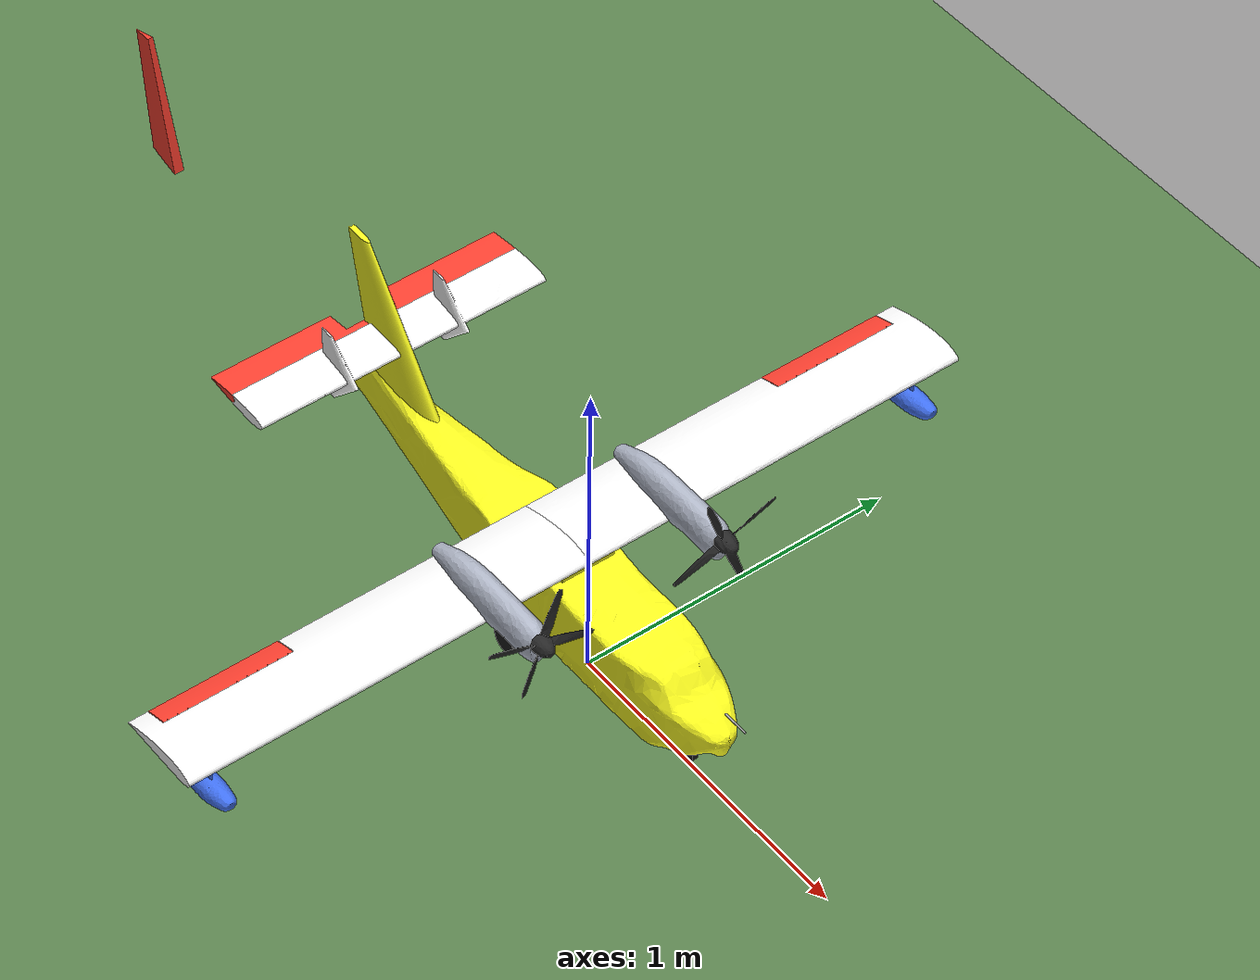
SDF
<?xml version="1.0" encoding="UTF-8"?>
<!-- runway world for the cl415 px4 sitl.
     location, magnetic field and physics step as px4's default world so the ekf's magnetic model agrees with the
     simulated magnetometer -->
<sdf version="1.9">
  <world name="cl415_runway">
    <physics type="ode">
      <max_step_size>0.004</max_step_size>
      <real_time_factor>1.0</real_time_factor>
      <real_time_update_rate>250</real_time_update_rate>
    </physics>
    <plugin filename="gz-sim-physics-system" name="gz::sim::systems::Physics"/>
    <plugin filename="gz-sim-user-commands-system" name="gz::sim::systems::UserCommands"/>
    <plugin filename="gz-sim-scene-broadcaster-system" name="gz::sim::systems::SceneBroadcaster"/>
    <plugin filename="gz-sim-contact-system" name="gz::sim::systems::Contact"/>
    <plugin filename="gz-sim-imu-system" name="gz::sim::systems::Imu"/>
    <plugin filename="gz-sim-air-pressure-system" name="gz::sim::systems::AirPressure"/>
    <plugin filename="gz-sim-air-speed-system" name="gz::sim::systems::AirSpeed"/>
    <plugin filename="gz-sim-navsat-system" name="gz::sim::systems::NavSat"/>
    <plugin filename="gz-sim-magnetometer-system" name="gz::sim::systems::Magnetometer"/>
    <plugin filename="gz-sim-sensors-system" name="gz::sim::systems::Sensors">
      <render_engine>ogre2</render_engine>
    </plugin>
    <gravity>0 0 -9.8</gravity>
    <magnetic_field>6e-06 2.3e-05 -4.2e-05</magnetic_field>
    <atmosphere type="adiabatic"/>
    <spherical_coordinates>
      <surface_model>EARTH_WGS84</surface_model>
      <world_frame_orientation>ENU</world_frame_orientation>
      <latitude_deg>47.397971057728974</latitude_deg>
      <longitude_deg>8.546163739800146</longitude_deg>
      <elevation>0</elevation>
    </spherical_coordinates>
    <scene>
      <grid>false</grid>
      <ambient>0.4 0.4 0.4 1</ambient>
      <background>0.6 0.75 0.9 1</background>
      <shadows>true</shadows>
    </scene>
    <light name="sun" type="directional">
      <pose>0 0 500 0 0 0</pose>
      <cast_shadows>true</cast_shadows>
      <diffuse>0.9 0.9 0.9 1</diffuse>
      <specular>0.3 0.3 0.3 1</specular>
      <direction>0.2 0.5 -0.8</direction>
    </light>
    <model name="ground">
      <static>true</static>
      <link name="link">
        <collision name="collision">
          <geometry><plane><normal>0 0 1</normal><size>4000 4000</size></plane></geometry>
          <surface><friction><ode><mu>1.0</mu><mu2>1.0</mu2></ode></friction></surface>
        </collision>
        <visual name="grass">
          <geometry><plane><normal>0 0 1</normal><size>4000 4000</size></plane></geometry>
          <material><ambient>0.35 0.5 0.3 1</ambient><diffuse>0.35 0.5 0.3 1</diffuse></material>
        </visual>
        <visual name="runway">
          <pose>150 0 0.005 0 0 0</pose>
          <geometry><box><size>400 20 0.01</size></box></geometry>
          <material><ambient>0.25 0.25 0.27 1</ambient><diffuse>0.25 0.25 0.27 1</diffuse></material>
        </visual>
        <visual name="centreline">
          <pose>150 0 0.011 0 0 0</pose>
          <geometry><box><size>380 0.3 0.002</size></box></geometry>
          <material><ambient>0.95 0.95 0.95 1</ambient><diffuse>0.95 0.95 0.95 1</diffuse></material>
        </visual>
      </link>
    </model>
    <model name="chase_cam">
      <pose>-8 -3.5 2.5 0 0 0</pose>
      <link name="link">
        <gravity>false</gravity>
        <inertial><mass>0.01</mass><inertia><ixx>1e-5</ixx><iyy>1e-5</iyy><izz>1e-5</izz></inertia></inertial>
        <sensor name="camera" type="camera">
          <update_rate>25</update_rate>
          <always_on>1</always_on>
          <visualize>false</visualize>
          <topic>/chase/image</topic>
          <camera>
            <horizontal_fov>0.85</horizontal_fov>
            <image><width>1280</width><height>720</height><format>R8G8B8</format></image>
            <clip><near>0.1</near><far>4000</far></clip>
          </camera>
          <plugin filename="gz-sim-camera-video-recorder-system" name="gz::sim::systems::CameraVideoRecorder">
            <service>/chase/record_video</service>
            <use_sim_time>true</use_sim_time>
            <fps>25</fps>
            <bitrate>6000000</bitrate>
          </plugin>
        </sensor>
      </link>
      <plugin filename="libCl415ChaseCamera.so" name="cl415::ChaseCamera">
        <target>cl415</target>
        <offset>-5.5 -2.6 1.3</offset>
        <look_height>0.1</look_height>
        <smoothing>0.25</smoothing>
      </plugin>
    </model>
    <include>
      <uri>model://cl415_px4</uri>
      <name>cl415</name>
      <pose>0 0 0.385 0 0 0</pose>
    </include>
  </world>
</sdf>

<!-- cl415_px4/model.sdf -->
<sdf version="1.11">
  <model name="cl415">
    <link name="base_link">
      <inertial>
        <pose>-0.068479471323888638 1.157110930130461e-06 -0.1051177703273083 0 0 0</pose>
        <mass>10.234999999999999</mass>
        <inertia>
          <ixx>1.1161726540920169</ixx>
          <ixy>-4.6032458373154549e-06</ixy>
          <ixz>0.03066836335247879</ixz>
          <iyy>0.79641183099399082</iyy>
          <iyz>-2.1113177945229111e-06</iyz>
          <izz>1.7147058934209141</izz>
        </inertia>
      </inertial>
      <collision name="base_link_fixed_joint_lump__fuselage_c0_collision">
        <pose>0.53251000000000004 0 -0.18029100000000001 0 0 0</pose>
        <geometry>
          <box>
            <size>0.12501999999999999 0.11189300000000001 0.14921499999999999</size>
          </box>
        </geometry>
      </collision>
      <collision name="base_link_fixed_joint_lump__fuselage_c1_collision_1">
        <pose>0.38500000000000001 0 -0.151395 0 0 0</pose>
        <geometry>
          <box>
            <size>0.17000000000000001 0.19908899999999999 0.26514300000000002</size>
          </box>
        </geometry>
      </collision>
      <collision name="base_link_fixed_joint_lump__fuselage_c2_collision_2">
        <pose>0.079963699999999999 0 -0.16194500000000001 0 0 0</pose>
        <geometry>
          <box>
            <size>0.44007299999999999 0.21010100000000001 0.28918899999999997</size>
          </box>
        </geometry>
      </collision>
      <collision name="base_link_fixed_joint_lump__fuselage_c3_collision_3">
        <pose>-0.29503600000000002 0 -0.142785 0 0 0</pose>
        <geometry>
          <box>
            <size>0.30992700000000001 0.197964 0.25087100000000001</size>
          </box>
        </geometry>
      </collision>
      <collision name="base_link_fixed_joint_lump__fuselage_c4_collision_4">
        <pose>-0.59999999999999998 0 -0.123921 0 0 0</pose>
        <geometry>
          <box>
            <size>0.29999999999999999 0.120182 0.21313799999999999</size>
          </box>
        </geometry>
      </collision>
      <collision name="base_link_fixed_joint_lump__fuselage_c5_collision_5">
        <pose>-0.92124899999999998 0 -0.10417899999999999 0 0 0</pose>
        <geometry>
          <box>
            <size>0.34249800000000002 0.038124199999999997 0.169682</size>
          </box>
        </geometry>
      </collision>
      <collision name="base_link_fixed_joint_lump__h_stab_c0_collision_6">
        <pose>-0.88500000000000001 0 0.127 0 0 0</pose>
        <geometry>
          <box>
            <size>0.14399999999999999 0.93600000000000005 0.038240000000000003</size>
          </box>
        </geometry>
      </collision>
      <collision name="base_link_fixed_joint_lump__left_float_c0_collision_7">
        <pose>-0.099890599999999996 1.1516999999999999 -0.14177899999999999 0 0 0</pose>
        <geometry>
          <box>
            <size>0.25748799999999999 0.037082799999999999 0.080418199999999995</size>
          </box>
        </geometry>
      </collision>
      <collision name="base_link_fixed_joint_lump__left_float_c1_collision_8">
        <pose>-0.10000000000000001 1.1516999999999999 -0.051569499999999997 0 0 0</pose>
        <geometry>
          <box>
            <size>0.080000000000000002 0.0089999999999999993 0.10000000000000001</size>
          </box>
        </geometry>
      </collision>
      <collision name="base_link_fixed_joint_lump__left_nacelle_c0_collision_9">
        <pose>-0.039742899999999998 0.29730099999999998 0.037859299999999999 0 0 0</pose>
        <geometry>
          <box>
            <size>0.39480500000000002 0.078228300000000001 0.126691</size>
          </box>
        </geometry>
      </collision>
      <collision name="base_link_fixed_joint_lump__left_wing_c0_collision_10">
        <pose>-0.139351 0.62749999999999995 0.0043729199999999998 0 -0.046251200000000027 0</pose>
        <geometry>
          <box>
            <size>0.27800000000000002 1.2549999999999999 0.047260000000000003</size>
          </box>
        </geometry>
      </collision>
      <collision name="base_link_fixed_joint_lump__right_float_c0_collision_11">
        <pose>-0.099890599999999996 -1.1516999999999999 -0.14177899999999999 0 0 0</pose>
        <geometry>
          <box>
            <size>0.25748799999999999 0.037082799999999999 0.080418199999999995</size>
          </box>
        </geometry>
      </collision>
      <collision name="base_link_fixed_joint_lump__right_float_c1_collision_12">
        <pose>-0.10000000000000001 -1.1516999999999999 -0.051569499999999997 0 0 0</pose>
        <geometry>
          <box>
            <size>0.080000000000000002 0.0089999999999999993 0.10000000000000001</size>
          </box>
        </geometry>
      </collision>
      <collision name="base_link_fixed_joint_lump__right_nacelle_c0_collision_13">
        <pose>-0.039742899999999998 -0.29729899999999998 0.037859299999999999 0 0 0</pose>
        <geometry>
          <box>
            <size>0.39480500000000002 0.078228300000000001 0.126691</size>
          </box>
        </geometry>
      </collision>
      <collision name="base_link_fixed_joint_lump__right_wing_c0_collision_14">
        <pose>-0.139351 -0.62749999999999995 0.0043729199999999998 0 -0.046251200000000027 0</pose>
        <geometry>
          <box>
            <size>0.27800000000000002 1.2549999999999999 0.047260000000000003</size>
          </box>
        </geometry>
      </collision>
      <collision name="base_link_fixed_joint_lump__v_stab_c0_collision_15">
        <pose>-0.86274300000000004 2.9923499999999999e-05 0.19685 0 0 0</pose>
        <geometry>
          <box>
            <size>0.35145500000000002 0.047060900000000003 0.40170600000000001</size>
          </box>
        </geometry>
      </collision>
      <visual name="base_link_fixed_joint_lump__fuselage_visual">
        <pose>0 0 0 0 0 0</pose>
        <geometry>
          <mesh>
            <scale>1 1 1</scale>
            <uri>model://cl415_description/meshes/fuselage.stl</uri>
          </mesh>
        </geometry>
        <material>
          <diffuse>1 1 0.125 1</diffuse>
          <ambient>1 1 0.125 1</ambient>
        </material>
      </visual>
      <visual name="base_link_fixed_joint_lump__h_stab_visual_1">
        <pose>0 0 0 0 0 0</pose>
        <geometry>
          <mesh>
            <scale>1 1 1</scale>
            <uri>model://cl415_description/meshes/h_stab.stl</uri>
          </mesh>
        </geometry>
        <material>
          <diffuse>1 1 1 1</diffuse>
          <ambient>1 1 1 1</ambient>
        </material>
      </visual>
      <visual name="base_link_fixed_joint_lump__left_float_visual_2">
        <pose>0 0 0 0 0 0</pose>
        <geometry>
          <mesh>
            <scale>1 1 1</scale>
            <uri>model://cl415_description/meshes/left_float.stl</uri>
          </mesh>
        </geometry>
        <material>
          <diffuse>0.25 0.4375 0.9375 1</diffuse>
          <ambient>0.25 0.4375 0.9375 1</ambient>
        </material>
      </visual>
      <visual name="base_link_fixed_joint_lump__left_nacelle_visual_3">
        <pose>0 0 0 0 0 0</pose>
        <geometry>
          <mesh>
            <scale>1 1 1</scale>
            <uri>model://cl415_description/meshes/left_nacelle.stl</uri>
          </mesh>
        </geometry>
        <material>
          <diffuse>0.6875 0.712499976 0.775000036 1</diffuse>
          <ambient>0.6875 0.712499976 0.775000036 1</ambient>
        </material>
      </visual>
      <visual name="base_link_fixed_joint_lump__left_wing_visual_4">
        <pose>0 0 0 0 0 0</pose>
        <geometry>
          <mesh>
            <scale>1 1 1</scale>
            <uri>model://cl415_description/meshes/left_wing.stl</uri>
          </mesh>
        </geometry>
        <material>
          <diffuse>1 1 1 1</diffuse>
          <ambient>1 1 1 1</ambient>
        </material>
      </visual>
      <visual name="base_link_fixed_joint_lump__right_float_visual_5">
        <pose>0 0 0 0 0 0</pose>
        <geometry>
          <mesh>
            <scale>1 1 1</scale>
            <uri>model://cl415_description/meshes/right_float.stl</uri>
          </mesh>
        </geometry>
        <material>
          <diffuse>0.25 0.4375 0.9375 1</diffuse>
          <ambient>0.25 0.4375 0.9375 1</ambient>
        </material>
      </visual>
      <visual name="base_link_fixed_joint_lump__right_nacelle_visual_6">
        <pose>0 0 0 0 0 0</pose>
        <geometry>
          <mesh>
            <scale>1 1 1</scale>
            <uri>model://cl415_description/meshes/right_nacelle.stl</uri>
          </mesh>
        </geometry>
        <material>
          <diffuse>0.6875 0.712499976 0.775000036 1</diffuse>
          <ambient>0.6875 0.712499976 0.775000036 1</ambient>
        </material>
      </visual>
      <visual name="base_link_fixed_joint_lump__right_wing_visual_7">
        <pose>0 0 0 0 0 0</pose>
        <geometry>
          <mesh>
            <scale>1 1 1</scale>
            <uri>model://cl415_description/meshes/right_wing.stl</uri>
          </mesh>
        </geometry>
        <material>
          <diffuse>1 1 1 1</diffuse>
          <ambient>1 1 1 1</ambient>
        </material>
      </visual>
      <visual name="base_link_fixed_joint_lump__v_stab_visual_8">
        <pose>0 0 0 0 0 0</pose>
        <geometry>
          <mesh>
            <scale>1 1 1</scale>
            <uri>model://cl415_description/meshes/v_stab.stl</uri>
          </mesh>
        </geometry>
        <material>
          <diffuse>1 1 0.125 1</diffuse>
          <ambient>1 1 0.125 1</ambient>
        </material>
      </visual>
      <visual name="base_link_fixed_joint_lump__water_tank_visual_9">
        <pose>0 0 0 0 0 0</pose>
        <geometry>
          <mesh>
            <scale>1 1 1</scale>
            <uri>model://cl415_description/meshes/water_tank.stl</uri>
          </mesh>
        </geometry>
        <material>
          <diffuse>0.875 1 1 1</diffuse>
          <ambient>0.875 1 1 1</ambient>
        </material>
      </visual>
      <sensor name="imu_sensor" type="imu">
        <pose>-0.0754 0 -0.1007 0 0 0</pose>
        <always_on>1</always_on>
        <update_rate>250</update_rate>
        <imu>
          <angular_velocity>
            <x>
              <noise type="gaussian">
                <mean>0</mean>
                <stddev>0.0003394</stddev>
                <dynamic_bias_stddev>3.8785e-05</dynamic_bias_stddev>
                <dynamic_bias_correlation_time>1000</dynamic_bias_correlation_time>
              </noise>
            </x>
            <y>
              <noise type="gaussian">
                <mean>0</mean>
                <stddev>0.0003394</stddev>
                <dynamic_bias_stddev>3.8785e-05</dynamic_bias_stddev>
                <dynamic_bias_correlation_time>1000</dynamic_bias_correlation_time>
              </noise>
            </y>
            <z>
              <noise type="gaussian">
                <mean>0</mean>
                <stddev>0.0003394</stddev>
                <dynamic_bias_stddev>3.8785e-05</dynamic_bias_stddev>
                <dynamic_bias_correlation_time>1000</dynamic_bias_correlation_time>
              </noise>
            </z>
          </angular_velocity>
          <linear_acceleration>
            <x>
              <noise type="gaussian">
                <mean>0</mean>
                <stddev>0.004</stddev>
                <dynamic_bias_stddev>0.006</dynamic_bias_stddev>
                <dynamic_bias_correlation_time>300</dynamic_bias_correlation_time>
              </noise>
            </x>
            <y>
              <noise type="gaussian">
                <mean>0</mean>
                <stddev>0.004</stddev>
                <dynamic_bias_stddev>0.006</dynamic_bias_stddev>
                <dynamic_bias_correlation_time>300</dynamic_bias_correlation_time>
              </noise>
            </y>
            <z>
              <noise type="gaussian">
                <mean>0</mean>
                <stddev>0.004</stddev>
                <dynamic_bias_stddev>0.006</dynamic_bias_stddev>
                <dynamic_bias_correlation_time>300</dynamic_bias_correlation_time>
              </noise>
            </z>
          </linear_acceleration>
        </imu>
      </sensor>
      <sensor name="air_pressure_sensor" type="air_pressure">
        <always_on>1</always_on>
        <update_rate>50</update_rate>
        <air_pressure>
          <pressure>
            <noise type="gaussian">
              <mean>0</mean>
              <stddev>0.01</stddev>
            </noise>
          </pressure>
        </air_pressure>
      </sensor>
      <sensor name="navsat_sensor" type="navsat">
        <always_on>1</always_on>
        <update_rate>30</update_rate>
      </sensor>
      <visual name="nose_strut_visual">
        <pose>0.4200 0.0000 -0.3025 0.0000 0 0</pose>
        <geometry>
          <cylinder>
            <radius>0.006</radius>
            <length>0.0650</length>
          </cylinder>
        </geometry>
        <material>
          <diffuse>0.6 0.6 0.6 1</diffuse>
          <ambient>0.6 0.6 0.6 1</ambient>
        </material>
      </visual>
      <visual name="lmain_strut_visual">
        <pose>-0.1501 0.1300 -0.2576 0.4804 0 0</pose>
        <geometry>
          <cylinder>
            <radius>0.006</radius>
            <length>0.1298</length>
          </cylinder>
        </geometry>
        <material>
          <diffuse>0.6 0.6 0.6 1</diffuse>
          <ambient>0.6 0.6 0.6 1</ambient>
        </material>
      </visual>
      <visual name="rmain_strut_visual">
        <pose>-0.1501 -0.1300 -0.2576 -0.4804 0 0</pose>
        <geometry>
          <cylinder>
            <radius>0.006</radius>
            <length>0.1298</length>
          </cylinder>
        </geometry>
        <material>
          <diffuse>0.6 0.6 0.6 1</diffuse>
          <ambient>0.6 0.6 0.6 1</ambient>
        </material>
      </visual>
    </link>
    <joint name="elevator_joint" type="revolute">
      <pose relative_to="base_link">-0.95699999999999996 0 0.127 0 0 0</pose>
      <parent>base_link</parent>
      <child>elevator</child>
      <axis>
        <xyz>0 -1 0</xyz>
        <limit>
          <lower>-0.436332</lower>
          <upper>0.436332</upper>
          <effort>2</effort>
          <velocity>8.6999999999999993</velocity>
        </limit>
        <dynamics>
          <damping>0.001</damping>
          <friction>0</friction>
          <spring_reference>0</spring_reference>
          <spring_stiffness>0</spring_stiffness>
        </dynamics>
      </axis>
    </joint>
    <link name="elevator">
      <pose relative_to="elevator_joint">0 0 0 0 0 0</pose>
      <inertial>
        <pose>-0.025073100000000001 1.80306e-07 1.08467e-08 0 0 0</pose>
        <mass>0.059999999999999998</mass>
        <inertia>
          <ixx>0.0049509999999999997</ixx>
          <ixy>-2.74619e-11</ixy>
          <ixz>6.4644800000000001e-11</ixz>
          <iyy>4.2833200000000002e-05</iyy>
          <iyz>1.9838599999999999e-10</iyz>
          <izz>0.0049888900000000002</izz>
        </inertia>
      </inertial>
      <collision name="elevator_c0_collision">
        <pose>-0.040276300000000001 -2.7755599999999997e-17 -1.3877799999999999e-17 0 0 0</pose>
        <geometry>
          <box>
            <size>0.109447 0.93600000000000005 0.028952100000000001</size>
          </box>
        </geometry>
      </collision>
      <visual name="elevator_visual">
        <pose>0 0 0 0 0 0</pose>
        <geometry>
          <mesh>
            <scale>1 1 1</scale>
            <uri>model://cl415_description/meshes/elevator.stl</uri>
          </mesh>
        </geometry>
        <material>
          <diffuse>1 0.25 0.187500015 1</diffuse>
          <ambient>1 0.25 0.187500015 1</ambient>
        </material>
      </visual>
    </link>
    <joint name="left_propeller_joint" type="revolute">
      <pose relative_to="base_link">0.1895 0.29730000000000001 0.060600000000000001 3.1415926535897931 1.5707926536359933 3.1415926535897931</pose>
      <parent>base_link</parent>
      <child>left_propeller</child>
      <axis>
        <xyz>0 0 1</xyz>
        <limit>
          <effort>10</effort>
          <velocity>200</velocity>
          <lower>-inf</lower>
          <upper>inf</upper>
        </limit>
        <dynamics>
          <spring_reference>0</spring_reference>
          <spring_stiffness>0</spring_stiffness>
        </dynamics>
      </axis>
    </joint>
    <link name="left_propeller">
      <pose relative_to="left_propeller_joint">0 0 0 0 0 0</pose>
      <inertial>
        <pose>-9.9280700000000003e-07 2.05844e-07 0.0079392899999999999 0 0 0</pose>
        <mass>0.050000000000000003</mass>
        <inertia>
          <ixx>6.4521699999999996e-05</ixx>
          <ixy>-4.1732299999999997e-11</ixy>
          <ixz>-7.4176499999999997e-10</ixz>
          <iyy>6.4524599999999995e-05</iyy>
          <iyz>1.94693e-10</iyz>
          <izz>0.000111037</izz>
        </inertia>
      </inertial>
      <collision name="left_propeller_c0_collision">
        <pose>0 0 0.01745 0 0 0</pose>
        <geometry>
          <cylinder>
            <length>0.058900000000000001</length>
            <radius>0.029600000000000001</radius>
          </cylinder>
        </geometry>
      </collision>
      <visual name="left_propeller_visual">
        <pose>0 0 0 0 0 0</pose>
        <geometry>
          <mesh>
            <scale>1 1 1</scale>
            <uri>model://cl415_description/meshes/left_propeller.stl</uri>
          </mesh>
        </geometry>
        <material>
          <diffuse>0.149999991 0.149999991 0.149999991 1</diffuse>
          <ambient>0.149999991 0.149999991 0.149999991 1</ambient>
        </material>
      </visual>
    </link>
    <joint name="left_aileron_joint" type="revolute">
      <pose relative_to="base_link">-0.208616 0.99399999999999999 -0.00231168 0 0 0</pose>
      <parent>base_link</parent>
      <child>left_aileron</child>
      <axis>
        <xyz>0 -1 0</xyz>
        <limit>
          <lower>-0.436332</lower>
          <upper>0.436332</upper>
          <effort>2</effort>
          <velocity>8.6999999999999993</velocity>
        </limit>
        <dynamics>
          <damping>0.001</damping>
          <friction>0</friction>
          <spring_reference>0</spring_reference>
          <spring_stiffness>0</spring_stiffness>
        </dynamics>
      </axis>
    </joint>
    <link name="left_aileron">
      <pose relative_to="left_aileron_joint">0 0 0 0 0 0</pose>
      <inertial>
        <pose>-0.0183503 -1.25899e-13 -0.0025524900000000001 0 0 0</pose>
        <mass>0.035000000000000003</mass>
        <inertia>
          <ixx>0.00046329200000000002</ixx>
          <ixy>0</ixy>
          <ixz>-1.74855e-06</ixz>
          <iyy>1.44088e-05</iyy>
          <iyz>0</iyz>
          <izz>0.00047513999999999998</izz>
        </inertia>
      </inertial>
      <collision name="left_aileron_c0_collision">
        <pose>-0.028365999999999999 -3.7025900000000001e-14 0.00013086799999999999 0 0 0</pose>
        <geometry>
          <box>
            <size>0.081617599999999998 0.39800000000000002 0.024963699999999998</size>
          </box>
        </geometry>
      </collision>
      <visual name="left_aileron_visual">
        <pose>0 0 0 0 0 0</pose>
        <geometry>
          <mesh>
            <scale>1 1 1</scale>
            <uri>model://cl415_description/meshes/left_aileron.stl</uri>
          </mesh>
        </geometry>
        <material>
          <diffuse>1 0.25 0.187500015 1</diffuse>
          <ambient>1 0.25 0.187500015 1</ambient>
        </material>
      </visual>
    </link>
    <joint name="right_propeller_joint" type="revolute">
      <pose relative_to="base_link">0.1895 -0.29730000000000001 0.060600000000000001 3.1415926535897931 1.5707926536359933 3.1415926535897931</pose>
      <parent>base_link</parent>
      <child>right_propeller</child>
      <axis>
        <xyz>0 0 1</xyz>
        <limit>
          <effort>10</effort>
          <velocity>200</velocity>
          <lower>-inf</lower>
          <upper>inf</upper>
        </limit>
        <dynamics>
          <spring_reference>0</spring_reference>
          <spring_stiffness>0</spring_stiffness>
        </dynamics>
      </axis>
    </joint>
    <link name="right_propeller">
      <pose relative_to="right_propeller_joint">0 0 0 0 0 0</pose>
      <inertial>
        <pose>-2.1925999999999999e-07 -2.9518399999999998e-07 0.0079393599999999995 0 0 0</pose>
        <mass>0.050000000000000003</mass>
        <inertia>
          <ixx>6.4521800000000003e-05</ixx>
          <ixy>1.3965499999999999e-09</ixy>
          <ixz>-2.5966100000000002e-10</ixz>
          <iyy>6.4533800000000002e-05</iyy>
          <iyz>-1.6273500000000001e-10</iyz>
          <izz>0.00011104599999999999</izz>
        </inertia>
      </inertial>
      <collision name="right_propeller_c0_collision">
        <pose>0 0 0.01745 0 0 0</pose>
        <geometry>
          <cylinder>
            <length>0.058900000000000001</length>
            <radius>0.029600000000000001</radius>
          </cylinder>
        </geometry>
      </collision>
      <visual name="right_propeller_visual">
        <pose>0 0 0 0 0 0</pose>
        <geometry>
          <mesh>
            <scale>1 1 1</scale>
            <uri>model://cl415_description/meshes/right_propeller.stl</uri>
          </mesh>
        </geometry>
        <material>
          <diffuse>0.149999991 0.149999991 0.149999991 1</diffuse>
          <ambient>0.149999991 0.149999991 0.149999991 1</ambient>
        </material>
      </visual>
    </link>
    <joint name="right_aileron_joint" type="revolute">
      <pose relative_to="base_link">-0.208616 -0.99399999999999999 -0.00231168 0 0 0</pose>
      <parent>base_link</parent>
      <child>right_aileron</child>
      <axis>
        <xyz>0 -1 0</xyz>
        <limit>
          <lower>-0.436332</lower>
          <upper>0.436332</upper>
          <effort>2</effort>
          <velocity>8.6999999999999993</velocity>
        </limit>
        <dynamics>
          <damping>0.001</damping>
          <friction>0</friction>
          <spring_reference>0</spring_reference>
          <spring_stiffness>0</spring_stiffness>
        </dynamics>
      </axis>
    </joint>
    <link name="right_aileron">
      <pose relative_to="right_aileron_joint">0 0 0 0 0 0</pose>
      <inertial>
        <pose>-0.0183503 -1.11577e-13 -0.0025524900000000001 0 0 0</pose>
        <mass>0.035000000000000003</mass>
        <inertia>
          <ixx>0.00046329200000000002</ixx>
          <ixy>0</ixy>
          <ixz>-1.74855e-06</ixz>
          <iyy>1.44088e-05</iyy>
          <iyz>0</iyz>
          <izz>0.00047513999999999998</izz>
        </inertia>
      </inertial>
      <collision name="right_aileron_c0_collision">
        <pose>-0.028365999999999999 -5.5511199999999995e-17 0.00013086799999999999 0 0 0</pose>
        <geometry>
          <box>
            <size>0.081617599999999998 0.39800000000000002 0.024963699999999998</size>
          </box>
        </geometry>
      </collision>
      <visual name="right_aileron_visual">
        <pose>0 0 0 0 0 0</pose>
        <geometry>
          <mesh>
            <scale>1 1 1</scale>
            <uri>model://cl415_description/meshes/right_aileron.stl</uri>
          </mesh>
        </geometry>
        <material>
          <diffuse>1 0.25 0.187500015 1</diffuse>
          <ambient>1 0.25 0.187500015 1</ambient>
        </material>
      </visual>
    </link>
    <joint name="rudder_joint" type="revolute">
      <pose relative_to="base_link">-0.95599999999999996 0 -0.017299999999999999 0 0 0</pose>
      <parent>base_link</parent>
      <child>rudder</child>
      <axis>
        <xyz>0.23288200000000001 0 -0.97250499999999995</xyz>
        <limit>
          <lower>-0.52359900000000004</lower>
          <upper>0.52359900000000004</upper>
          <effort>2</effort>
          <velocity>8.6999999999999993</velocity>
        </limit>
        <dynamics>
          <damping>0.001</damping>
          <friction>0</friction>
          <spring_reference>0</spring_reference>
          <spring_stiffness>0</spring_stiffness>
        </dynamics>
      </axis>
    </joint>
    <link name="rudder">
      <pose relative_to="rudder_joint">0 0 0 0 0 0</pose>
      <inertial>
        <pose>-0.080166600000000005 1.2362500000000001e-08 0.176709 0 0 0</pose>
        <mass>0.035000000000000003</mass>
        <inertia>
          <ixx>0.00047898199999999998</ixx>
          <ixy>-2.5839099999999998e-10</ixy>
          <ixz>9.1311999999999996e-05</ixz>
          <iyy>0.000520003</iyy>
          <iyz>-7.29896e-11</iyz>
          <izz>4.3085399999999999e-05</izz>
        </inertia>
      </inertial>
      <collision name="rudder_c0_collision">
        <pose>-0.088195800000000005 -1.73472e-18 0.21965000000000001 0 0 0</pose>
        <geometry>
          <box>
            <size>0.17399700000000001 0.031550700000000001 0.42930000000000001</size>
          </box>
        </geometry>
      </collision>
      <visual name="rudder_visual">
        <pose>0 0 0 0 0 0</pose>
        <geometry>
          <mesh>
            <scale>1 1 1</scale>
            <uri>model://cl415_description/meshes/rudder.stl</uri>
          </mesh>
        </geometry>
        <material>
          <diffuse>1 0.25 0.187500015 1</diffuse>
          <ambient>1 0.25 0.187500015 1</ambient>
        </material>
      </visual>
    </link>
    <plugin name="gz::sim::systems::JointPositionController" filename="gz-sim-joint-position-controller-system">
      <joint_name>left_aileron_joint</joint_name>
      <topic>/model/cl415/servo_0</topic>
      <p_gain>0.1691</p_gain>
      <i_gain>0.5411</i_gain>
      <d_gain>0.004228</d_gain>
      <i_max>0.15</i_max>
      <i_min>-0.15</i_min>
      <cmd_max>0.5</cmd_max>
      <cmd_min>-0.5</cmd_min>
    </plugin>
    <plugin name="gz::sim::systems::JointPositionController" filename="gz-sim-joint-position-controller-system">
      <joint_name>right_aileron_joint</joint_name>
      <topic>/model/cl415/servo_1</topic>
      <p_gain>0.1691</p_gain>
      <i_gain>0.5411</i_gain>
      <d_gain>0.004228</d_gain>
      <i_max>0.15</i_max>
      <i_min>-0.15</i_min>
      <cmd_max>0.5</cmd_max>
      <cmd_min>-0.5</cmd_min>
    </plugin>
    <plugin name="gz::sim::systems::JointPositionController" filename="gz-sim-joint-position-controller-system">
      <joint_name>elevator_joint</joint_name>
      <topic>/model/cl415/servo_2</topic>
      <p_gain>0.5155</p_gain>
      <i_gain>1.65</i_gain>
      <d_gain>0.01289</d_gain>
      <i_max>0.15</i_max>
      <i_min>-0.15</i_min>
      <cmd_max>0.5</cmd_max>
      <cmd_min>-0.5</cmd_min>
    </plugin>
    <plugin name="gz::sim::systems::JointPositionController" filename="gz-sim-joint-position-controller-system">
      <joint_name>rudder_joint</joint_name>
      <topic>/model/cl415/servo_3</topic>
      <p_gain>0.4659</p_gain>
      <i_gain>1.491</i_gain>
      <d_gain>0.01165</d_gain>
      <i_max>0.15</i_max>
      <i_min>-0.15</i_min>
      <cmd_max>0.5</cmd_max>
      <cmd_min>-0.5</cmd_min>
    </plugin>
    <plugin name="gz::sim::systems::JointStatePublisher" filename="gz-sim-joint-state-publisher-system">
      <topic>/cl415/joint_states</topic>
    </plugin>
    <plugin name="gz::sim::systems::OdometryPublisher" filename="gz-sim-odometry-publisher-system">
      <odom_frame>odom</odom_frame>
      <robot_base_frame>base_link</robot_base_frame>
      <dimensions>3</dimensions>
      <odom_publish_frequency>50</odom_publish_frequency>
      <odom_topic>/cl415/odometry</odom_topic>
      <tf_topic>/cl415/tf</tf_topic>
    </plugin>
    <frame name="fuselage_joint" attached_to="base_link">
      <pose>0 0 0 0 0 0</pose>
    </frame>
    <frame name="fuselage" attached_to="fuselage_joint">
      <pose>0 0 0 0 0 0</pose>
    </frame>
    <frame name="h_stab_joint" attached_to="base_link">
      <pose>0 0 0 0 0 0</pose>
    </frame>
    <frame name="h_stab" attached_to="h_stab_joint">
      <pose>0 0 0 0 0 0</pose>
    </frame>
    <frame name="left_float_joint" attached_to="base_link">
      <pose>0 0 0 0 0 0</pose>
    </frame>
    <frame name="left_float" attached_to="left_float_joint">
      <pose>0 0 0 0 0 0</pose>
    </frame>
    <frame name="left_nacelle_joint" attached_to="base_link">
      <pose>0 0 0 0 0 0</pose>
    </frame>
    <frame name="left_nacelle" attached_to="left_nacelle_joint">
      <pose>0 0 0 0 0 0</pose>
    </frame>
    <frame name="left_wing_joint" attached_to="base_link">
      <pose>0 0 0 0 0 0</pose>
    </frame>
    <frame name="left_wing" attached_to="left_wing_joint">
      <pose>0 0 0 0 0 0</pose>
    </frame>
    <frame name="right_float_joint" attached_to="base_link">
      <pose>0 0 0 0 0 0</pose>
    </frame>
    <frame name="right_float" attached_to="right_float_joint">
      <pose>0 0 0 0 0 0</pose>
    </frame>
    <frame name="right_nacelle_joint" attached_to="base_link">
      <pose>0 0 0 0 0 0</pose>
    </frame>
    <frame name="right_nacelle" attached_to="right_nacelle_joint">
      <pose>0 0 0 0 0 0</pose>
    </frame>
    <frame name="right_wing_joint" attached_to="base_link">
      <pose>0 0 0 0 0 0</pose>
    </frame>
    <frame name="right_wing" attached_to="right_wing_joint">
      <pose>0 0 0 0 0 0</pose>
    </frame>
    <frame name="v_stab_joint" attached_to="base_link">
      <pose>0 0 0 0 0 0</pose>
    </frame>
    <frame name="v_stab" attached_to="v_stab_joint">
      <pose>0 0 0 0 0 0</pose>
    </frame>
    <frame name="water_tank_joint" attached_to="base_link">
      <pose>0 0 0 0 0 0</pose>
    </frame>
    <frame name="water_tank" attached_to="water_tank_joint">
      <pose>0 0 0 0 0 0</pose>
    </frame>
    <plugin filename="gz-sim-advanced-lift-drag-system" name="gz::sim::systems::AdvancedLiftDrag">
      <link_name>base_link</link_name>
      <air_density>1.225</air_density>
      <area>0.698035</area>
      <AR>9.02548</AR>
      <mac>0.278</mac>
      <eff>0.928047</eff>
      <cp>-0.07545 0.00000 -0.10066</cp>
      <forward>1 0 0</forward>
      <upward>0 0 1</upward>
      <CL0>0.544231</CL0>
      <CLa>6.09047</CLa>
      <alpha_stall>0.251327</alpha_stall>
      <CD0>0.032783</CD0>
      <Cem0>0.05539</Cem0>
      <Cema>-1.53427</Cema>
      <Cema_stall>-1.53427</Cema_stall>
      <CYa>0</CYa>
      <Cella>0</Cella>
      <Cena>0</Cena>
      <CLb>-0</CLb>
      <CYb>-0.469932</CYb>
      <Cellb>-0.06012</Cellb>
      <Cemb>0</Cemb>
      <Cenb>0.072001</Cenb>
      <CDp>0</CDp>
      <CYp>-0.009409</CYp>
      <CLp>0</CLp>
      <Cellp>-0.549225</Cellp>
      <Cemp>-0</Cemp>
      <Cenp>-0.029423</Cenp>
      <CDq>0.308277</CDq>
      <CYq>0</CYq>
      <CLq>9.98403</CLq>
      <Cellq>0</Cellq>
      <Cemq>-20.8295</Cemq>
      <Cenq>0</Cenq>
      <CDr>0</CDr>
      <CYr>0.202182</CYr>
      <CLr>0</CLr>
      <Cellr>0.180921</Cellr>
      <Cemr>0</Cemr>
      <Cenr>-0.119828</Cenr>
      <num_ctrl_surfaces>4</num_ctrl_surfaces>
      <control_surface>
        <name>left_aileron_joint</name>
        <direction>1</direction>
        <CD_ctrl>0</CD_ctrl>
        <CY_ctrl>-9.87296e-05</CY_ctrl>
        <CL_ctrl>0.00459018</CL_ctrl>
        <Cell_ctrl>0.00181779</Cell_ctrl>
        <Cem_ctrl>-0.00266743</Cem_ctrl>
        <Cen_ctrl>-0.000107441</Cen_ctrl>
      </control_surface>
      <control_surface>
        <name>right_aileron_joint</name>
        <direction>1</direction>
        <CD_ctrl>0</CD_ctrl>
        <CY_ctrl>9.87296e-05</CY_ctrl>
        <CL_ctrl>0.00459018</CL_ctrl>
        <Cell_ctrl>-0.00181779</Cell_ctrl>
        <Cem_ctrl>-0.00266743</Cem_ctrl>
        <Cen_ctrl>0.000107441</Cen_ctrl>
      </control_surface>
      <control_surface>
        <name>elevator_joint</name>
        <direction>1</direction>
        <CD_ctrl>0</CD_ctrl>
        <CY_ctrl>0</CY_ctrl>
        <CL_ctrl>0.0129694</CL_ctrl>
        <Cell_ctrl>0</Cell_ctrl>
        <Cem_ctrl>-0.0366869</Cem_ctrl>
        <Cen_ctrl>0</Cen_ctrl>
      </control_surface>
      <control_surface>
        <name>rudder_joint</name>
        <direction>1</direction>
        <CD_ctrl>0</CD_ctrl>
        <CY_ctrl>0.00387567</CY_ctrl>
        <CL_ctrl>0</CL_ctrl>
        <Cell_ctrl>0.000422589</Cell_ctrl>
        <Cem_ctrl>0</Cem_ctrl>
        <Cen_ctrl>-0.00139588</Cen_ctrl>
      </control_surface>
    </plugin>
    <plugin filename="libCl415Magnetometer.so" name="cl415::Magnetometer">
      <link_name>base_link</link_name>
      <sensor_name>magnetometer_sensor</sensor_name>
      <field_ned_gauss>0.21746 0.01254 0.43042</field_ned_gauss>
      <update_rate>100</update_rate>
      <noise_stddev>0.002</noise_stddev>
    </plugin>
    <plugin filename="libCl415PropellerMap.so" name="cl415::PropellerMap">
      <joint_name>left_propeller_joint</joint_name>
      <command_topic>/cl415/command/motor_speed</command_topic>
      <motor_number>0</motor_number>
      <command_full_throttle>1000</command_full_throttle>
      <thrust_map>model://cl415_px4/maps/thrust_N.csv</thrust_map>
      <torque_map>model://cl415_px4/maps/torque_Nm.csv</torque_map>
      <rpm_map>model://cl415_px4/maps/rpm.csv</rpm_map>
      <time_constant_up>0.04</time_constant_up>
      <time_constant_down>0.06</time_constant_down>
      <turning_direction>cw</turning_direction>
      <visual_slowdown>10</visual_slowdown>
    </plugin>
    <plugin filename="libCl415PropellerMap.so" name="cl415::PropellerMap">
      <joint_name>right_propeller_joint</joint_name>
      <command_topic>/cl415/command/motor_speed</command_topic>
      <motor_number>1</motor_number>
      <command_full_throttle>1000</command_full_throttle>
      <thrust_map>model://cl415_px4/maps/thrust_N.csv</thrust_map>
      <torque_map>model://cl415_px4/maps/torque_Nm.csv</torque_map>
      <rpm_map>model://cl415_px4/maps/rpm.csv</rpm_map>
      <time_constant_up>0.04</time_constant_up>
      <time_constant_down>0.06</time_constant_down>
      <turning_direction>ccw</turning_direction>
      <visual_slowdown>10</visual_slowdown>
    </plugin>
    <link name="airspeed_link">
      <pose>0.575 0 -0.060 0 0 0</pose>
      <inertial>
        <mass>0.005</mass>
        <inertia>
          <ixx>1e-06</ixx>
          <ixy>0</ixy>
          <ixz>0</ixz>
          <iyy>1e-06</iyy>
          <iyz>0</iyz>
          <izz>1e-06</izz>
        </inertia>
      </inertial>
      <visual name="pitot_visual">
        <pose>0.04 0 0 0 1.5708 0</pose>
        <geometry>
          <cylinder>
            <radius>0.003</radius>
            <length>0.08</length>
          </cylinder>
        </geometry>
      </visual>
      <sensor name="air_speed" type="air_speed">
        <always_on>1</always_on>
        <update_rate>20</update_rate>
        <air_speed />
      </sensor>
    </link>
    <joint name="airspeed_joint" type="fixed">
      <parent>base_link</parent>
      <child>airspeed_link</child>
    </joint>
    <link name="tail_cam_link">
      <pose>-0.72 0 0.43 0 0.10 0</pose>
      <inertial>
        <mass>0.005</mass>
        <inertia>
          <ixx>1e-06</ixx>
          <ixy>0</ixy>
          <ixz>0</ixz>
          <iyy>1e-06</iyy>
          <iyz>0</iyz>
          <izz>1e-06</izz>
        </inertia>
      </inertial>
      <sensor name="tail_cam" type="camera">
        <update_rate>25</update_rate>
        <always_on>1</always_on>
        <visualize>false</visualize>
        <topic>/cl415/tailcam/image</topic>
        <camera>
          <horizontal_fov>1.4</horizontal_fov>
          <image>
            <width>960</width>
            <height>540</height>
            <format>R8G8B8</format>
          </image>
          <clip>
            <near>0.05</near>
            <far>4000</far>
          </clip>
        </camera>
        <plugin filename="gz-sim-camera-video-recorder-system" name="gz::sim::systems::CameraVideoRecorder">
          <service>/cl415/record_tailcam</service>
          <use_sim_time>true</use_sim_time>
          <fps>25</fps>
          <bitrate>4000000</bitrate>
        </plugin>
      </sensor>
    </link>
    <joint name="tail_cam_joint" type="fixed">
      <parent>base_link</parent>
      <child>tail_cam_link</child>
    </joint>
    <link name="nose_wheel">
      <pose>0.4200 0.0000 -0.3350 0 0 0</pose>
      <inertial>
        <mass>0.03</mass>
        <inertia>
          <ixx>1.2e-05</ixx>
          <ixy>0</ixy>
          <ixz>0</ixz>
          <iyy>2.4e-05</iyy>
          <iyz>0</iyz>
          <izz>1.2e-05</izz>
        </inertia>
      </inertial>
      <visual name="nose_wheel_visual">
        <pose>0 0 0 1.5708 0 0</pose>
        <geometry>
          <cylinder>
            <radius>0.04</radius>
            <length>0.02</length>
          </cylinder>
        </geometry>
        <material>
          <diffuse>0.1 0.1 0.1 1</diffuse>
          <ambient>0.1 0.1 0.1 1</ambient>
        </material>
      </visual>
      <collision name="nose_wheel_collision">
        <pose>0 0 0 1.5708 0 0</pose>
        <geometry>
          <cylinder>
            <radius>0.04</radius>
            <length>0.02</length>
          </cylinder>
        </geometry>
        <surface>
          <friction>
            <ode>
              <mu>1.0</mu>
              <mu2>0.5</mu2>
              <fdir1>0 0 1</fdir1>
            </ode>
          </friction>
        </surface>
      </collision>
    </link>
    <joint name="nose_wheel_joint" type="revolute">
      <parent>base_link</parent>
      <child>nose_wheel</child>
      <axis>
        <xyz>0 1 0</xyz>
        <limit>
          <lower>-1e+16</lower>
          <upper>1e+16</upper>
        </limit>
        <dynamics>
          <damping>0.0005</damping>
        </dynamics>
      </axis>
    </joint>
    <link name="left_main_wheel">
      <pose>-0.1501 0.1600 -0.3151 0 0 0</pose>
      <inertial>
        <mass>0.03</mass>
        <inertia>
          <ixx>1.2e-05</ixx>
          <ixy>0</ixy>
          <ixz>0</ixz>
          <iyy>2.4e-05</iyy>
          <iyz>0</iyz>
          <izz>1.2e-05</izz>
        </inertia>
      </inertial>
      <visual name="left_main_wheel_visual">
        <pose>0 0 0 1.5708 0 0</pose>
        <geometry>
          <cylinder>
            <radius>0.04</radius>
            <length>0.02</length>
          </cylinder>
        </geometry>
        <material>
          <diffuse>0.1 0.1 0.1 1</diffuse>
          <ambient>0.1 0.1 0.1 1</ambient>
        </material>
      </visual>
      <collision name="left_main_wheel_collision">
        <pose>0 0 0 1.5708 0 0</pose>
        <geometry>
          <cylinder>
            <radius>0.04</radius>
            <length>0.02</length>
          </cylinder>
        </geometry>
        <surface>
          <friction>
            <ode>
              <mu>1.0</mu>
              <mu2>0.5</mu2>
              <fdir1>0 0 1</fdir1>
            </ode>
          </friction>
        </surface>
      </collision>
    </link>
    <joint name="left_main_wheel_joint" type="revolute">
      <parent>base_link</parent>
      <child>left_main_wheel</child>
      <axis>
        <xyz>0 1 0</xyz>
        <limit>
          <lower>-1e+16</lower>
          <upper>1e+16</upper>
        </limit>
        <dynamics>
          <damping>0.0005</damping>
        </dynamics>
      </axis>
    </joint>
    <link name="right_main_wheel">
      <pose>-0.1501 -0.1600 -0.3151 0 0 0</pose>
      <inertial>
        <mass>0.03</mass>
        <inertia>
          <ixx>1.2e-05</ixx>
          <ixy>0</ixy>
          <ixz>0</ixz>
          <iyy>2.4e-05</iyy>
          <iyz>0</iyz>
          <izz>1.2e-05</izz>
        </inertia>
      </inertial>
      <visual name="right_main_wheel_visual">
        <pose>0 0 0 1.5708 0 0</pose>
        <geometry>
          <cylinder>
            <radius>0.04</radius>
            <length>0.02</length>
          </cylinder>
        </geometry>
        <material>
          <diffuse>0.1 0.1 0.1 1</diffuse>
          <ambient>0.1 0.1 0.1 1</ambient>
        </material>
      </visual>
      <collision name="right_main_wheel_collision">
        <pose>0 0 0 1.5708 0 0</pose>
        <geometry>
          <cylinder>
            <radius>0.04</radius>
            <length>0.02</length>
          </cylinder>
        </geometry>
        <surface>
          <friction>
            <ode>
              <mu>1.0</mu>
              <mu2>0.5</mu2>
              <fdir1>0 0 1</fdir1>
            </ode>
          </friction>
        </surface>
      </collision>
    </link>
    <joint name="right_main_wheel_joint" type="revolute">
      <parent>base_link</parent>
      <child>right_main_wheel</child>
      <axis>
        <xyz>0 1 0</xyz>
        <limit>
          <lower>-1e+16</lower>
          <upper>1e+16</upper>
        </limit>
        <dynamics>
          <damping>0.0005</damping>
        </dynamics>
      </axis>
    </joint>
  </model>
</sdf>
